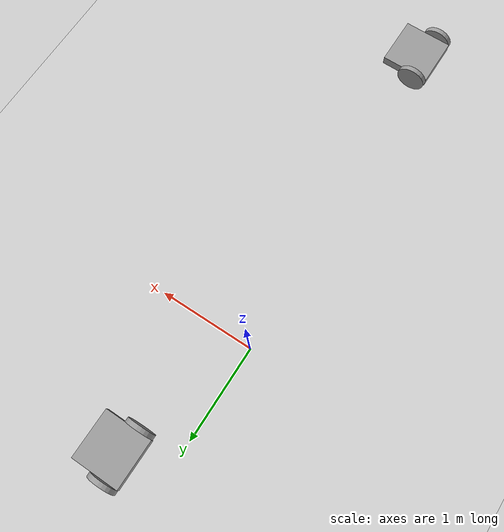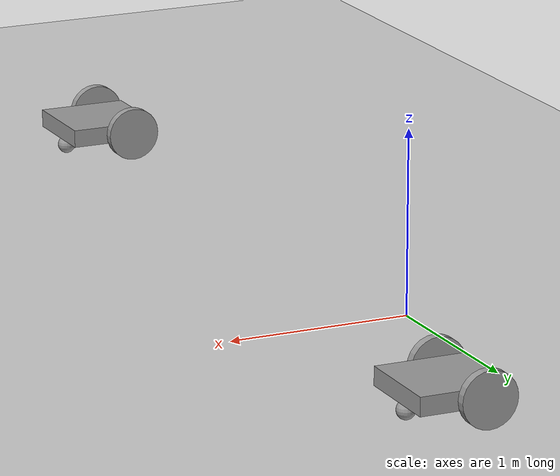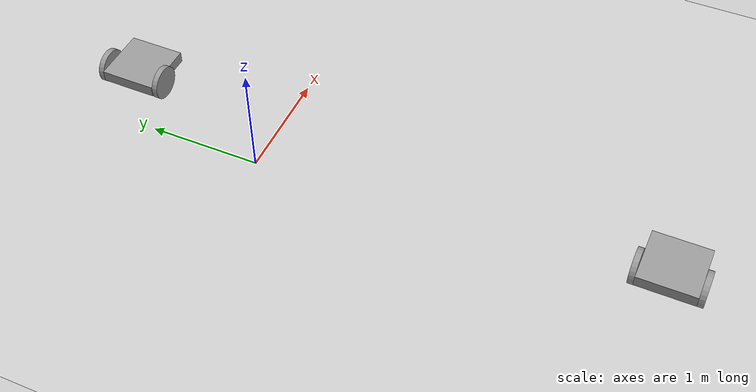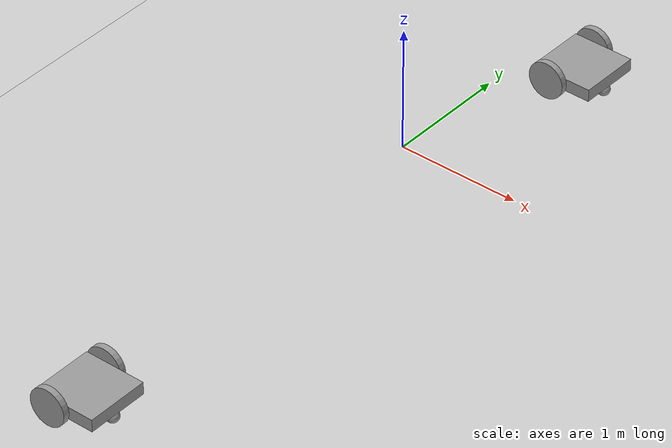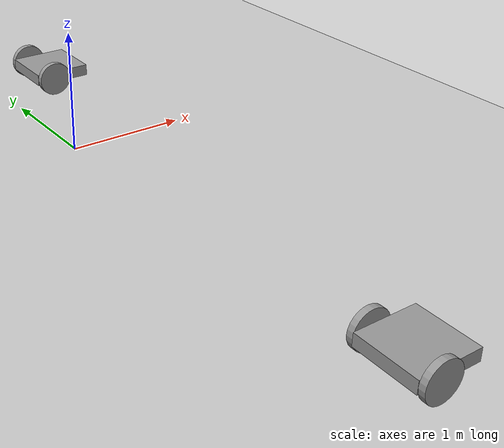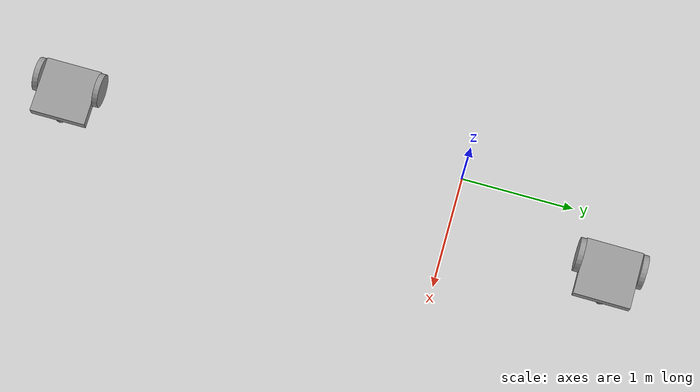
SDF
<sdf version="1.6">
 <world name="default">
  <model name="ground_plane">
   <static>1</static>
   <link name="link">
    <collision name="collision">
     <geometry><plane><normal>0 0 1</normal><size>100 100</size></plane></geometry>
     <surface>
      <contact><collide_bitmask>65535</collide_bitmask></contact>
      <friction><ode><mu>100</mu><mu2>50</mu2></ode></friction>
     </surface>
    </collision>
    <visual name="visual">
     <cast_shadows>0</cast_shadows>
     <geometry><plane><normal>0 0 1</normal><size>100 100</size></plane></geometry>
     <material>
      <script><uri>file://media/materials/scripts/gazebo.material</uri><name>Gazebo/Grey</name></script>
     </material>
    </visual>
   </link>
  </model>
  <model name="guilyx_wheeled">
   <link name="link_0_clone">
    <inertial>
     <mass>1</mass>
     <inertia>
      <ixx>0.166667</ixx>
      <ixy>0</ixy>
      <ixz>0</ixz>
      <iyy>0.166667</iyy>
      <iyz>0</iyz>
      <izz>0.166667</izz>
     </inertia>
    </inertial>
    <pose>-1e-06 1e-06 0.025 0 -0 0</pose>
    <visual name="visual">
     <geometry><box><size>0.5 0.5 0.1</size></box></geometry>
     <material>
      <lighting>1</lighting>
      <script><uri>file://media/materials/scripts/gazebo.material</uri><name>Gazebo/Grey</name></script>
      <shader type="vertex"><normal_map>__default__</normal_map></shader>
      <ambient>0.3 0.3 0.3 1</ambient>
      <diffuse>0.7 0.7 0.7 1</diffuse>
      <specular>0.01 0.01 0.01 1</specular>
      <emissive>0 0 0 1</emissive>
     </material>
    </visual>
    <collision name="collision">
     <geometry><box><size>0.5 0.5 0.1</size></box></geometry>
     <surface>
      <friction>
       <ode><mu>1</mu><mu2>1</mu2><fdir1>0 0 0</fdir1><slip1>0</slip1><slip2>0</slip2></ode>
       <torsional>
        <coefficient>1</coefficient>
        <patch_radius>0</patch_radius>
        <surface_radius>0</surface_radius>
        <use_patch_radius>1</use_patch_radius>
        <ode><slip>0</slip></ode>
       </torsional>
      </friction>
      <bounce><restitution_coefficient>0</restitution_coefficient><threshold>1e+06</threshold></bounce>
      <contact>
       <collide_without_contact>0</collide_without_contact>
       <collide_without_contact_bitmask>1</collide_without_contact_bitmask>
       <collide_bitmask>1</collide_bitmask>
       <ode>
        <soft_cfm>0</soft_cfm>
        <soft_erp>0.2</soft_erp>
        <kp>1e+13</kp>
        <kd>1</kd>
        <max_vel>0.01</max_vel>
        <min_depth>0</min_depth>
       </ode>
       <bullet>
        <split_impulse>1</split_impulse>
        <split_impulse_penetration_threshold>-0.01</split_impulse_penetration_threshold>
        <soft_cfm>0</soft_cfm>
        <soft_erp>0.2</soft_erp>
        <kp>1e+13</kp>
        <kd>1</kd>
       </bullet>
      </contact>
     </surface>
    </collision>
   </link>
   <link name="link_1_clone">
    <inertial>
     <mass>1</mass>
     <inertia><ixx>0.1</ixx><ixy>0</ixy><ixz>0</ixz><iyy>0.1</iyy><iyz>0</iyz><izz>0.1</izz></inertia>
    </inertial>
    <pose>0.200004 1e-06 -0.075 0 -0 0</pose>
    <visual name="visual">
     <geometry><sphere><radius>0.05</radius></sphere></geometry>
     <material>
      <lighting>1</lighting>
      <script><uri>file://media/materials/scripts/gazebo.material</uri><name>Gazebo/Grey</name></script>
      <shader type="vertex"><normal_map>__default__</normal_map></shader>
      <ambient>0.3 0.3 0.3 1</ambient>
      <diffuse>0.7 0.7 0.7 1</diffuse>
      <specular>0.01 0.01 0.01 1</specular>
      <emissive>0 0 0 1</emissive>
     </material>
    </visual>
    <collision name="collision">
     <geometry><sphere><radius>0.05</radius></sphere></geometry>
     <surface>
      <friction>
       <ode><mu>1</mu><mu2>1</mu2><fdir1>0 0 0</fdir1><slip1>0</slip1><slip2>0</slip2></ode>
       <torsional>
        <coefficient>1</coefficient>
        <patch_radius>0</patch_radius>
        <surface_radius>0</surface_radius>
        <use_patch_radius>1</use_patch_radius>
        <ode><slip>0</slip></ode>
       </torsional>
      </friction>
      <bounce><restitution_coefficient>0</restitution_coefficient><threshold>1e+06</threshold></bounce>
      <contact>
       <collide_without_contact>0</collide_without_contact>
       <collide_without_contact_bitmask>1</collide_without_contact_bitmask>
       <collide_bitmask>1</collide_bitmask>
       <ode>
        <soft_cfm>0</soft_cfm>
        <soft_erp>0.2</soft_erp>
        <kp>1e+13</kp>
        <kd>1</kd>
        <max_vel>0.01</max_vel>
        <min_depth>0</min_depth>
       </ode>
       <bullet>
        <split_impulse>1</split_impulse>
        <split_impulse_penetration_threshold>-0.01</split_impulse_penetration_threshold>
        <soft_cfm>0</soft_cfm>
        <soft_erp>0.2</soft_erp>
        <kp>1e+13</kp>
        <kd>1</kd>
       </bullet>
      </contact>
     </surface>
    </collision>
   </link>
   <link name="link_3_clone">
    <inertial>
     <mass>1</mass>
     <inertia><ixx>0.145833</ixx><ixy>0</ixy><ixz>0</ixz><iyy>0.145833</iyy><iyz>0</iyz><izz>0.125</izz></inertia>
    </inertial>
    <pose>-0.100001 0.275015 0.025 1.5707 -0 0</pose>
    <visual name="visual">
     <geometry><cylinder><radius>0.15</radius><length>0.05</length></cylinder></geometry>
     <material>
      <lighting>1</lighting>
      <script><uri>file://media/materials/scripts/gazebo.material</uri><name>Gazebo/Grey</name></script>
      <shader type="vertex"><normal_map>__default__</normal_map></shader>
      <ambient>0.3 0.3 0.3 1</ambient>
      <diffuse>0.7 0.7 0.7 1</diffuse>
      <specular>0.01 0.01 0.01 1</specular>
      <emissive>0 0 0 1</emissive>
     </material>
    </visual>
    <collision name="collision">
     <geometry><cylinder><radius>0.15</radius><length>0.05</length></cylinder></geometry>
     <surface>
      <friction>
       <ode><mu>1</mu><mu2>1</mu2><fdir1>0 0 0</fdir1><slip1>0</slip1><slip2>0</slip2></ode>
       <torsional>
        <coefficient>1</coefficient>
        <patch_radius>0</patch_radius>
        <surface_radius>0</surface_radius>
        <use_patch_radius>1</use_patch_radius>
        <ode><slip>0</slip></ode>
       </torsional>
      </friction>
      <bounce><restitution_coefficient>0</restitution_coefficient><threshold>1e+06</threshold></bounce>
      <contact>
       <collide_without_contact>0</collide_without_contact>
       <collide_without_contact_bitmask>1</collide_without_contact_bitmask>
       <collide_bitmask>1</collide_bitmask>
       <ode>
        <soft_cfm>0</soft_cfm>
        <soft_erp>0.2</soft_erp>
        <kp>1e+13</kp>
        <kd>1</kd>
        <max_vel>0.01</max_vel>
        <min_depth>0</min_depth>
       </ode>
       <bullet>
        <split_impulse>1</split_impulse>
        <split_impulse_penetration_threshold>-0.01</split_impulse_penetration_threshold>
        <soft_cfm>0</soft_cfm>
        <soft_erp>0.2</soft_erp>
        <kp>1e+13</kp>
        <kd>1</kd>
       </bullet>
      </contact>
     </surface>
    </collision>
   </link>
   <link name="link_3_clone_0">
    <inertial>
     <mass>1</mass>
     <inertia><ixx>0.145833</ixx><ixy>0</ixy><ixz>0</ixz><iyy>0.145833</iyy><iyz>0</iyz><izz>0.125</izz></inertia>
    </inertial>
    <pose>-0.100001 -0.275015 0.025 1.5707 -0 0</pose>
    <visual name="visual">
     <geometry><cylinder><radius>0.15</radius><length>0.05</length></cylinder></geometry>
     <material>
      <lighting>1</lighting>
      <script><uri>file://media/materials/scripts/gazebo.material</uri><name>Gazebo/Grey</name></script>
      <shader type="vertex"><normal_map>__default__</normal_map></shader>
      <ambient>0.3 0.3 0.3 1</ambient>
      <diffuse>0.7 0.7 0.7 1</diffuse>
      <specular>0.01 0.01 0.01 1</specular>
      <emissive>0 0 0 1</emissive>
     </material>
    </visual>
    <collision name="collision">
     <geometry><cylinder><radius>0.15</radius><length>0.05</length></cylinder></geometry>
     <surface>
      <friction>
       <ode><mu>1</mu><mu2>1</mu2><fdir1>0 0 0</fdir1><slip1>0</slip1><slip2>0</slip2></ode>
       <torsional>
        <coefficient>1</coefficient>
        <patch_radius>0</patch_radius>
        <surface_radius>0</surface_radius>
        <use_patch_radius>1</use_patch_radius>
        <ode><slip>0</slip></ode>
       </torsional>
      </friction>
      <bounce><restitution_coefficient>0</restitution_coefficient><threshold>1e+06</threshold></bounce>
      <contact>
       <collide_without_contact>0</collide_without_contact>
       <collide_without_contact_bitmask>1</collide_without_contact_bitmask>
       <collide_bitmask>1</collide_bitmask>
       <ode>
        <soft_cfm>0</soft_cfm>
        <soft_erp>0.2</soft_erp>
        <kp>1e+13</kp>
        <kd>1</kd>
        <max_vel>0.01</max_vel>
        <min_depth>0</min_depth>
       </ode>
       <bullet>
        <split_impulse>1</split_impulse>
        <split_impulse_penetration_threshold>-0.01</split_impulse_penetration_threshold>
        <soft_cfm>0</soft_cfm>
        <soft_erp>0.2</soft_erp>
        <kp>1e+13</kp>
        <kd>1</kd>
       </bullet>
      </contact>
     </surface>
    </collision>
   </link>
   <joint name="link_0_clone_JOINT_4" type="revolute">
    <parent>link_0_clone</parent>
    <child>link_3_clone_0</child>
    <axis>
     <xyz>0 0 1</xyz>
     <use_parent_model_frame>0</use_parent_model_frame>
     <limit>
      <lower>-1.79769e+308</lower>
      <upper>1.79769e+308</upper>
      <effort>-1</effort>
      <velocity>-1</velocity>
     </limit>
     <dynamics>
      <spring_reference>0</spring_reference>
      <spring_stiffness>0</spring_stiffness>
      <damping>0</damping>
     </dynamics>
    </axis>
    <physics>
     <ode><limit><cfm>0</cfm><erp>0.2</erp></limit><suspension><cfm>0</cfm><erp>0.2</erp></suspension></ode>
    </physics>
   </joint>
   <joint name="link_0_clone_JOINT_5" type="revolute">
    <parent>link_0_clone</parent>
    <child>link_3_clone</child>
    <axis>
     <xyz>0 0 1</xyz>
     <use_parent_model_frame>0</use_parent_model_frame>
     <limit>
      <lower>-1.79769e+308</lower>
      <upper>1.79769e+308</upper>
      <effort>-1</effort>
      <velocity>-1</velocity>
     </limit>
     <dynamics>
      <spring_reference>0</spring_reference>
      <spring_stiffness>0</spring_stiffness>
      <damping>0</damping>
     </dynamics>
    </axis>
    <physics>
     <ode><limit><cfm>0</cfm><erp>0.2</erp></limit><suspension><cfm>0</cfm><erp>0.2</erp></suspension></ode>
    </physics>
   </joint>
   <joint name="link_0_clone_JOINT_8" type="ball">
    <parent>link_0_clone</parent>
    <child>link_1_clone</child>
    <physics>
     <ode><limit><cfm>0</cfm><erp>0.2</erp></limit><suspension><cfm>0</cfm><erp>0.2</erp></suspension></ode>
    </physics>
   </joint>
   <static>0</static>
   <pose>0.228966 -3.54928 0.125002 3e-06 1.1e-05 -0.002871</pose>
  </model>
  <model name="guilyx_wheeled_1">
   <link name="link_0_clone">
    <inertial>
     <mass>1</mass>
     <inertia>
      <ixx>0.166667</ixx>
      <ixy>0</ixy>
      <ixz>0</ixz>
      <iyy>0.166667</iyy>
      <iyz>0</iyz>
      <izz>0.166667</izz>
     </inertia>
    </inertial>
    <pose>-1e-06 1e-06 0.025 0 -0 0</pose>
    <visual name="visual">
     <geometry><box><size>0.5 0.5 0.1</size></box></geometry>
     <material>
      <lighting>1</lighting>
      <script><uri>file://media/materials/scripts/gazebo.material</uri><name>Gazebo/Grey</name></script>
      <shader type="vertex"><normal_map>__default__</normal_map></shader>
      <ambient>0.3 0.3 0.3 1</ambient>
      <diffuse>0.7 0.7 0.7 1</diffuse>
      <specular>0.01 0.01 0.01 1</specular>
      <emissive>0 0 0 1</emissive>
     </material>
    </visual>
    <collision name="collision">
     <geometry><box><size>0.5 0.5 0.1</size></box></geometry>
     <surface>
      <friction>
       <ode><mu>1</mu><mu2>1</mu2><fdir1>0 0 0</fdir1><slip1>0</slip1><slip2>0</slip2></ode>
       <torsional>
        <coefficient>1</coefficient>
        <patch_radius>0</patch_radius>
        <surface_radius>0</surface_radius>
        <use_patch_radius>1</use_patch_radius>
        <ode><slip>0</slip></ode>
       </torsional>
      </friction>
      <bounce><restitution_coefficient>0</restitution_coefficient><threshold>1e+06</threshold></bounce>
      <contact>
       <collide_without_contact>0</collide_without_contact>
       <collide_without_contact_bitmask>1</collide_without_contact_bitmask>
       <collide_bitmask>1</collide_bitmask>
       <ode>
        <soft_cfm>0</soft_cfm>
        <soft_erp>0.2</soft_erp>
        <kp>1e+13</kp>
        <kd>1</kd>
        <max_vel>0.01</max_vel>
        <min_depth>0</min_depth>
       </ode>
       <bullet>
        <split_impulse>1</split_impulse>
        <split_impulse_penetration_threshold>-0.01</split_impulse_penetration_threshold>
        <soft_cfm>0</soft_cfm>
        <soft_erp>0.2</soft_erp>
        <kp>1e+13</kp>
        <kd>1</kd>
       </bullet>
      </contact>
     </surface>
    </collision>
   </link>
   <link name="link_1_clone">
    <inertial>
     <mass>1</mass>
     <inertia><ixx>0.1</ixx><ixy>0</ixy><ixz>0</ixz><iyy>0.1</iyy><iyz>0</iyz><izz>0.1</izz></inertia>
    </inertial>
    <pose>0.200004 1e-06 -0.075 0 -0 0</pose>
    <visual name="visual">
     <geometry><sphere><radius>0.05</radius></sphere></geometry>
     <material>
      <lighting>1</lighting>
      <script><uri>file://media/materials/scripts/gazebo.material</uri><name>Gazebo/Grey</name></script>
      <shader type="vertex"><normal_map>__default__</normal_map></shader>
      <ambient>0.3 0.3 0.3 1</ambient>
      <diffuse>0.7 0.7 0.7 1</diffuse>
      <specular>0.01 0.01 0.01 1</specular>
      <emissive>0 0 0 1</emissive>
     </material>
    </visual>
    <collision name="collision">
     <geometry><sphere><radius>0.05</radius></sphere></geometry>
     <surface>
      <friction>
       <ode><mu>1</mu><mu2>1</mu2><fdir1>0 0 0</fdir1><slip1>0</slip1><slip2>0</slip2></ode>
       <torsional>
        <coefficient>1</coefficient>
        <patch_radius>0</patch_radius>
        <surface_radius>0</surface_radius>
        <use_patch_radius>1</use_patch_radius>
        <ode><slip>0</slip></ode>
       </torsional>
      </friction>
      <bounce><restitution_coefficient>0</restitution_coefficient><threshold>1e+06</threshold></bounce>
      <contact>
       <collide_without_contact>0</collide_without_contact>
       <collide_without_contact_bitmask>1</collide_without_contact_bitmask>
       <collide_bitmask>1</collide_bitmask>
       <ode>
        <soft_cfm>0</soft_cfm>
        <soft_erp>0.2</soft_erp>
        <kp>1e+13</kp>
        <kd>1</kd>
        <max_vel>0.01</max_vel>
        <min_depth>0</min_depth>
       </ode>
       <bullet>
        <split_impulse>1</split_impulse>
        <split_impulse_penetration_threshold>-0.01</split_impulse_penetration_threshold>
        <soft_cfm>0</soft_cfm>
        <soft_erp>0.2</soft_erp>
        <kp>1e+13</kp>
        <kd>1</kd>
       </bullet>
      </contact>
     </surface>
    </collision>
   </link>
   <link name="link_3_clone">
    <inertial>
     <mass>1</mass>
     <inertia><ixx>0.145833</ixx><ixy>0</ixy><ixz>0</ixz><iyy>0.145833</iyy><iyz>0</iyz><izz>0.125</izz></inertia>
    </inertial>
    <pose>-0.100001 0.275015 0.025 1.5707 -0 0</pose>
    <visual name="visual">
     <geometry><cylinder><radius>0.15</radius><length>0.05</length></cylinder></geometry>
     <material>
      <lighting>1</lighting>
      <script><uri>file://media/materials/scripts/gazebo.material</uri><name>Gazebo/Grey</name></script>
      <shader type="vertex"><normal_map>__default__</normal_map></shader>
      <ambient>0.3 0.3 0.3 1</ambient>
      <diffuse>0.7 0.7 0.7 1</diffuse>
      <specular>0.01 0.01 0.01 1</specular>
      <emissive>0 0 0 1</emissive>
     </material>
    </visual>
    <collision name="collision">
     <geometry><cylinder><radius>0.15</radius><length>0.05</length></cylinder></geometry>
     <surface>
      <friction>
       <ode><mu>1</mu><mu2>1</mu2><fdir1>0 0 0</fdir1><slip1>0</slip1><slip2>0</slip2></ode>
       <torsional>
        <coefficient>1</coefficient>
        <patch_radius>0</patch_radius>
        <surface_radius>0</surface_radius>
        <use_patch_radius>1</use_patch_radius>
        <ode><slip>0</slip></ode>
       </torsional>
      </friction>
      <bounce><restitution_coefficient>0</restitution_coefficient><threshold>1e+06</threshold></bounce>
      <contact>
       <collide_without_contact>0</collide_without_contact>
       <collide_without_contact_bitmask>1</collide_without_contact_bitmask>
       <collide_bitmask>1</collide_bitmask>
       <ode>
        <soft_cfm>0</soft_cfm>
        <soft_erp>0.2</soft_erp>
        <kp>1e+13</kp>
        <kd>1</kd>
        <max_vel>0.01</max_vel>
        <min_depth>0</min_depth>
       </ode>
       <bullet>
        <split_impulse>1</split_impulse>
        <split_impulse_penetration_threshold>-0.01</split_impulse_penetration_threshold>
        <soft_cfm>0</soft_cfm>
        <soft_erp>0.2</soft_erp>
        <kp>1e+13</kp>
        <kd>1</kd>
       </bullet>
      </contact>
     </surface>
    </collision>
   </link>
   <link name="link_3_clone_0">
    <inertial>
     <mass>1</mass>
     <inertia><ixx>0.145833</ixx><ixy>0</ixy><ixz>0</ixz><iyy>0.145833</iyy><iyz>0</iyz><izz>0.125</izz></inertia>
    </inertial>
    <pose>-0.100001 -0.275015 0.025 1.5707 -0 0</pose>
    <visual name="visual">
     <geometry><cylinder><radius>0.15</radius><length>0.05</length></cylinder></geometry>
     <material>
      <lighting>1</lighting>
      <script><uri>file://media/materials/scripts/gazebo.material</uri><name>Gazebo/Grey</name></script>
      <shader type="vertex"><normal_map>__default__</normal_map></shader>
      <ambient>0.3 0.3 0.3 1</ambient>
      <diffuse>0.7 0.7 0.7 1</diffuse>
      <specular>0.01 0.01 0.01 1</specular>
      <emissive>0 0 0 1</emissive>
     </material>
    </visual>
    <collision name="collision">
     <geometry><cylinder><radius>0.15</radius><length>0.05</length></cylinder></geometry>
     <surface>
      <friction>
       <ode><mu>1</mu><mu2>1</mu2><fdir1>0 0 0</fdir1><slip1>0</slip1><slip2>0</slip2></ode>
       <torsional>
        <coefficient>1</coefficient>
        <patch_radius>0</patch_radius>
        <surface_radius>0</surface_radius>
        <use_patch_radius>1</use_patch_radius>
        <ode><slip>0</slip></ode>
       </torsional>
      </friction>
      <bounce><restitution_coefficient>0</restitution_coefficient><threshold>1e+06</threshold></bounce>
      <contact>
       <collide_without_contact>0</collide_without_contact>
       <collide_without_contact_bitmask>1</collide_without_contact_bitmask>
       <collide_bitmask>1</collide_bitmask>
       <ode>
        <soft_cfm>0</soft_cfm>
        <soft_erp>0.2</soft_erp>
        <kp>1e+13</kp>
        <kd>1</kd>
        <max_vel>0.01</max_vel>
        <min_depth>0</min_depth>
       </ode>
       <bullet>
        <split_impulse>1</split_impulse>
        <split_impulse_penetration_threshold>-0.01</split_impulse_penetration_threshold>
        <soft_cfm>0</soft_cfm>
        <soft_erp>0.2</soft_erp>
        <kp>1e+13</kp>
        <kd>1</kd>
       </bullet>
      </contact>
     </surface>
    </collision>
   </link>
   <joint name="link_0_clone_JOINT_4" type="revolute">
    <parent>link_0_clone</parent>
    <child>link_3_clone_0</child>
    <axis>
     <xyz>0 0 1</xyz>
     <use_parent_model_frame>0</use_parent_model_frame>
     <limit>
      <lower>-1.79769e+308</lower>
      <upper>1.79769e+308</upper>
      <effort>-1</effort>
      <velocity>-1</velocity>
     </limit>
     <dynamics>
      <spring_reference>0</spring_reference>
      <spring_stiffness>0</spring_stiffness>
      <damping>0</damping>
     </dynamics>
    </axis>
    <physics>
     <ode><limit><cfm>0</cfm><erp>0.2</erp></limit><suspension><cfm>0</cfm><erp>0.2</erp></suspension></ode>
    </physics>
   </joint>
   <joint name="link_0_clone_JOINT_5" type="revolute">
    <parent>link_0_clone</parent>
    <child>link_3_clone</child>
    <axis>
     <xyz>0 0 1</xyz>
     <use_parent_model_frame>0</use_parent_model_frame>
     <limit>
      <lower>-1.79769e+308</lower>
      <upper>1.79769e+308</upper>
      <effort>-1</effort>
      <velocity>-1</velocity>
     </limit>
     <dynamics>
      <spring_reference>0</spring_reference>
      <spring_stiffness>0</spring_stiffness>
      <damping>0</damping>
     </dynamics>
    </axis>
    <physics>
     <ode><limit><cfm>0</cfm><erp>0.2</erp></limit><suspension><cfm>0</cfm><erp>0.2</erp></suspension></ode>
    </physics>
   </joint>
   <joint name="link_0_clone_JOINT_8" type="ball">
    <parent>link_0_clone</parent>
    <child>link_1_clone</child>
    <physics>
     <ode><limit><cfm>0</cfm><erp>0.2</erp></limit><suspension><cfm>0</cfm><erp>0.2</erp></suspension></ode>
    </physics>
   </joint>
   <static>0</static>
   <pose>0.51838 1.41357 0.125001 0 4e-06 -0.007636</pose>
  </model>
 </world>
</sdf>
